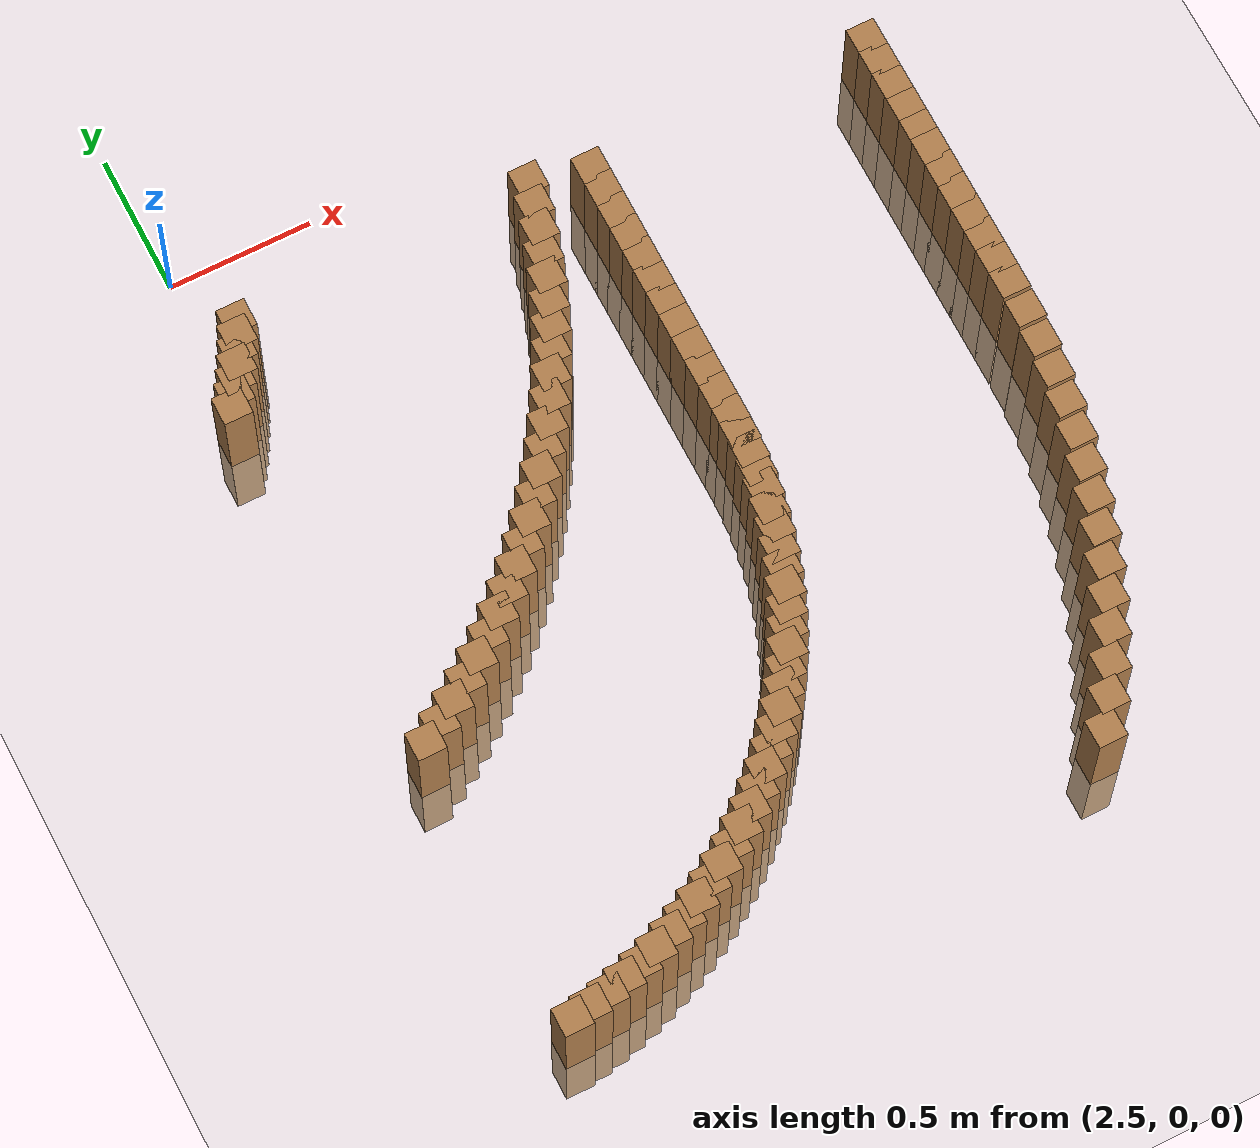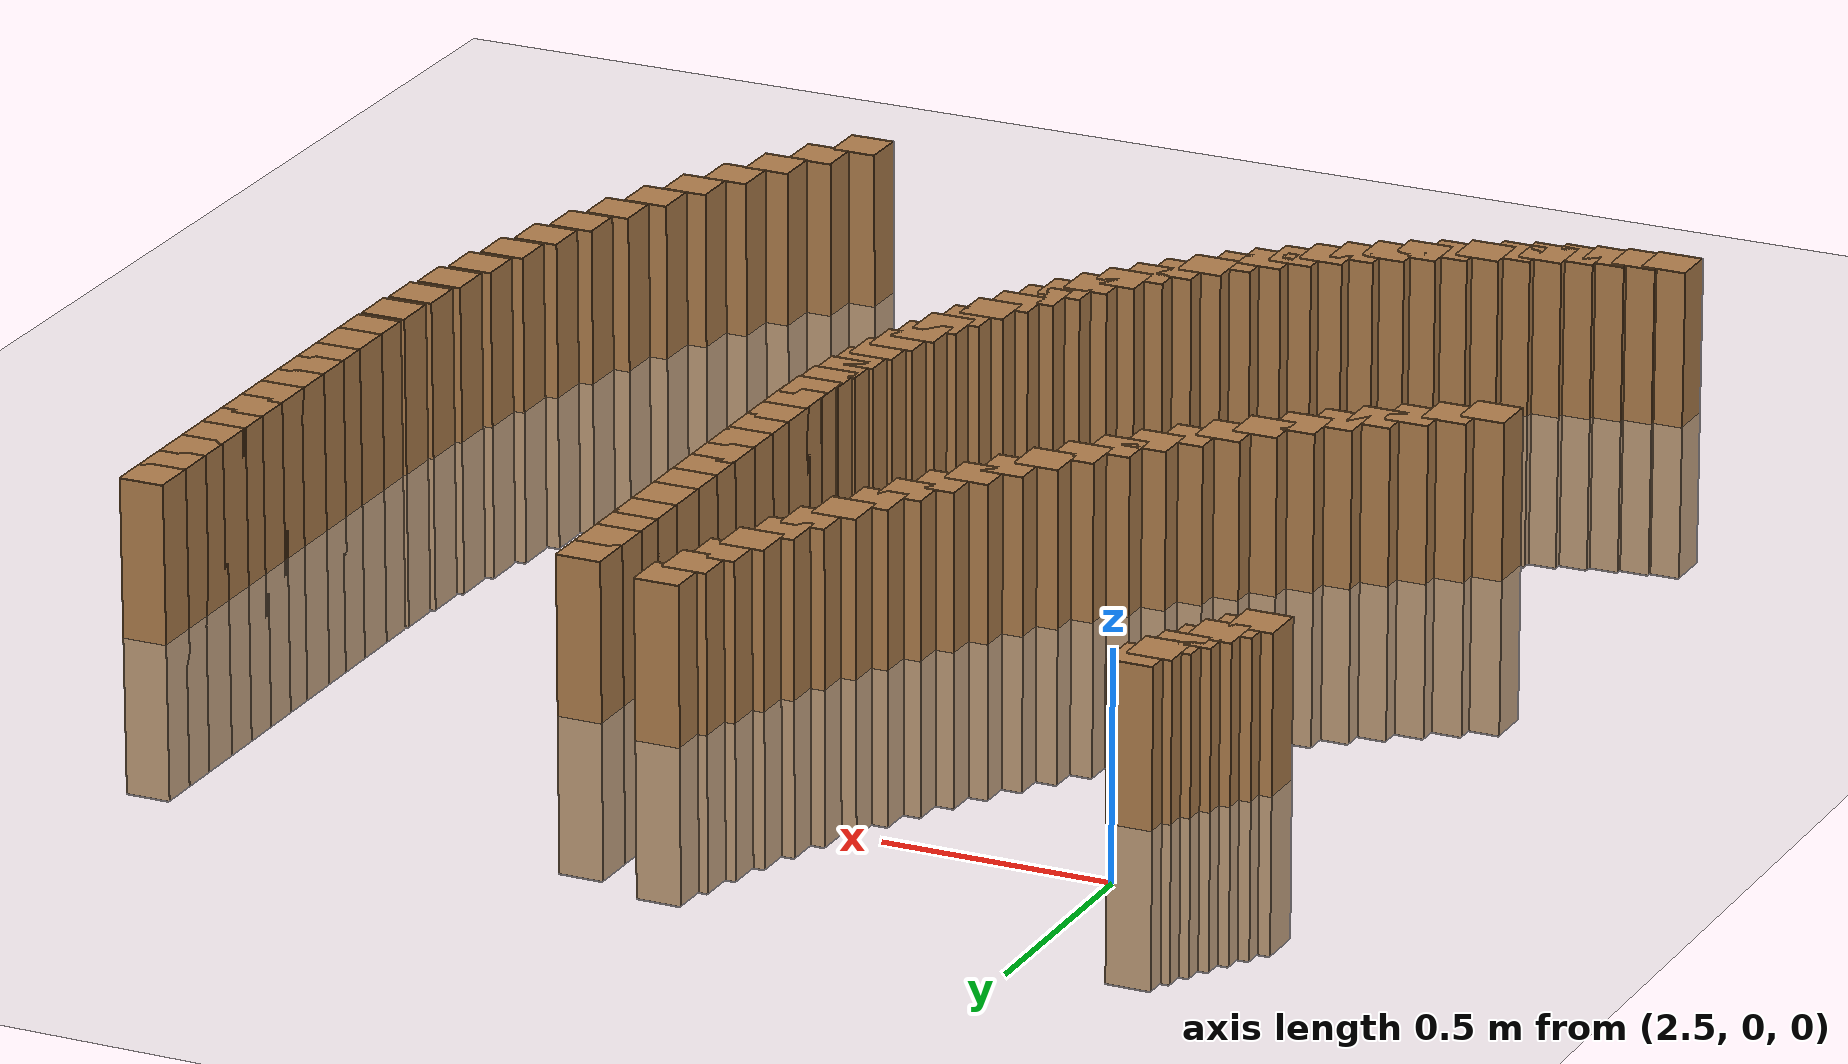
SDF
<sdf version="1.6">
 <world name="default">
  <model name="ground_plane">
   <static>1</static>
   <link name="link">
    <collision name="collision">
     <geometry><plane><normal>0 0 1</normal><size>100 100</size></plane></geometry>
     <surface><friction><ode><mu>100</mu><mu2>50</mu2></ode></friction></surface>
    </collision>
    <visual name="visual">
     <cast_shadows>0</cast_shadows>
     <geometry><plane><normal>0 0 1</normal><size>100 100</size></plane></geometry>
     <material>
      <script><uri>file://media/materials/scripts/gazebo.material</uri><name>Gazebo/Grey</name></script>
     </material>
    </visual>
   </link>
  </model>
  <model name="track">
   <link name="inner_209">
    <pose>3.637023 -0.326648 0.000000 0 -0 0</pose>
    <collision name="collision"><geometry><box><size>0.1 0.1 0.7</size></box></geometry></collision>
    <visual name="visual">
     <geometry><box><size>0.1 0.1 0.7</size></box></geometry>
     <material>
      <script><uri>file://media/materials/scripts/gazebo.material</uri><name>Gazebo/Wood</name></script>
     </material>
    </visual>
   </link>
   <link name="inner_210">
    <pose>3.616387 -0.409638 0.000000 0 -0 0</pose>
    <collision name="collision"><geometry><box><size>0.1 0.1 0.7</size></box></geometry></collision>
    <visual name="visual">
     <geometry><box><size>0.1 0.1 0.7</size></box></geometry>
     <material>
      <script><uri>file://media/materials/scripts/gazebo.material</uri><name>Gazebo/Wood</name></script>
     </material>
    </visual>
   </link>
   <link name="inner_211">
    <pose>3.592978 -0.491616 0.000000 0 -0 0</pose>
    <collision name="collision"><geometry><box><size>0.1 0.1 0.7</size></box></geometry></collision>
    <visual name="visual">
     <geometry><box><size>0.1 0.1 0.7</size></box></geometry>
     <material>
      <script><uri>file://media/materials/scripts/gazebo.material</uri><name>Gazebo/Wood</name></script>
     </material>
    </visual>
   </link>
   <link name="inner_212">
    <pose>3.566841 -0.572491 0.000000 0 -0 0</pose>
    <collision name="collision"><geometry><box><size>0.1 0.1 0.7</size></box></geometry></collision>
    <visual name="visual">
     <geometry><box><size>0.1 0.1 0.7</size></box></geometry>
     <material>
      <script><uri>file://media/materials/scripts/gazebo.material</uri><name>Gazebo/Wood</name></script>
     </material>
    </visual>
   </link>
   <link name="inner_213">
    <pose>3.538025 -0.652172 0.000000 0 -0 0</pose>
    <collision name="collision"><geometry><box><size>0.1 0.1 0.7</size></box></geometry></collision>
    <visual name="visual">
     <geometry><box><size>0.1 0.1 0.7</size></box></geometry>
     <material>
      <script><uri>file://media/materials/scripts/gazebo.material</uri><name>Gazebo/Wood</name></script>
     </material>
    </visual>
   </link>
   <link name="inner_214">
    <pose>3.506581 -0.730572 0.000000 0 -0 0</pose>
    <collision name="collision"><geometry><box><size>0.1 0.1 0.7</size></box></geometry></collision>
    <visual name="visual">
     <geometry><box><size>0.1 0.1 0.7</size></box></geometry>
     <material>
      <script><uri>file://media/materials/scripts/gazebo.material</uri><name>Gazebo/Wood</name></script>
     </material>
    </visual>
   </link>
   <link name="inner_215">
    <pose>3.472562 -0.807603 0.000000 0 -0 0</pose>
    <collision name="collision"><geometry><box><size>0.1 0.1 0.7</size></box></geometry></collision>
    <visual name="visual">
     <geometry><box><size>0.1 0.1 0.7</size></box></geometry>
     <material>
      <script><uri>file://media/materials/scripts/gazebo.material</uri><name>Gazebo/Wood</name></script>
     </material>
    </visual>
   </link>
   <link name="inner_216">
    <pose>3.436026 -0.883182 0.000000 0 -0 0</pose>
    <collision name="collision"><geometry><box><size>0.1 0.1 0.7</size></box></geometry></collision>
    <visual name="visual">
     <geometry><box><size>0.1 0.1 0.7</size></box></geometry>
     <material>
      <script><uri>file://media/materials/scripts/gazebo.material</uri><name>Gazebo/Wood</name></script>
     </material>
    </visual>
   </link>
   <link name="inner_217">
    <pose>3.397030 -0.957227 0.000000 0 -0 0</pose>
    <collision name="collision"><geometry><box><size>0.1 0.1 0.7</size></box></geometry></collision>
    <visual name="visual">
     <geometry><box><size>0.1 0.1 0.7</size></box></geometry>
     <material>
      <script><uri>file://media/materials/scripts/gazebo.material</uri><name>Gazebo/Wood</name></script>
     </material>
    </visual>
   </link>
   <link name="inner_218">
    <pose>3.355639 -1.029658 0.000000 0 -0 0</pose>
    <collision name="collision"><geometry><box><size>0.1 0.1 0.7</size></box></geometry></collision>
    <visual name="visual">
     <geometry><box><size>0.1 0.1 0.7</size></box></geometry>
     <material>
      <script><uri>file://media/materials/scripts/gazebo.material</uri><name>Gazebo/Wood</name></script>
     </material>
    </visual>
   </link>
   <link name="inner_219">
    <pose>3.311915 -1.100399 0.000000 0 -0 0</pose>
    <collision name="collision"><geometry><box><size>0.1 0.1 0.7</size></box></geometry></collision>
    <visual name="visual">
     <geometry><box><size>0.1 0.1 0.7</size></box></geometry>
     <material>
      <script><uri>file://media/materials/scripts/gazebo.material</uri><name>Gazebo/Wood</name></script>
     </material>
    </visual>
   </link>
   <link name="inner_220">
    <pose>3.265926 -1.169374 0.000000 0 -0 0</pose>
    <collision name="collision"><geometry><box><size>0.1 0.1 0.7</size></box></geometry></collision>
    <visual name="visual">
     <geometry><box><size>0.1 0.1 0.7</size></box></geometry>
     <material>
      <script><uri>file://media/materials/scripts/gazebo.material</uri><name>Gazebo/Wood</name></script>
     </material>
    </visual>
   </link>
   <link name="inner_221">
    <pose>3.217742 -1.236513 0.000000 0 -0 0</pose>
    <collision name="collision"><geometry><box><size>0.1 0.1 0.7</size></box></geometry></collision>
    <visual name="visual">
     <geometry><box><size>0.1 0.1 0.7</size></box></geometry>
     <material>
      <script><uri>file://media/materials/scripts/gazebo.material</uri><name>Gazebo/Wood</name></script>
     </material>
    </visual>
   </link>
   <link name="inner_222">
    <pose>3.167435 -1.301745 0.000000 0 -0 0</pose>
    <collision name="collision"><geometry><box><size>0.1 0.1 0.7</size></box></geometry></collision>
    <visual name="visual">
     <geometry><box><size>0.1 0.1 0.7</size></box></geometry>
     <material>
      <script><uri>file://media/materials/scripts/gazebo.material</uri><name>Gazebo/Wood</name></script>
     </material>
    </visual>
   </link>
   <link name="inner_223">
    <pose>3.115077 -1.365004 0.000000 0 -0 0</pose>
    <collision name="collision"><geometry><box><size>0.1 0.1 0.7</size></box></geometry></collision>
    <visual name="visual">
     <geometry><box><size>0.1 0.1 0.7</size></box></geometry>
     <material>
      <script><uri>file://media/materials/scripts/gazebo.material</uri><name>Gazebo/Wood</name></script>
     </material>
    </visual>
   </link>
   <link name="inner_224">
    <pose>3.060745 -1.426227 0.000000 0 -0 0</pose>
    <collision name="collision"><geometry><box><size>0.1 0.1 0.7</size></box></geometry></collision>
    <visual name="visual">
     <geometry><box><size>0.1 0.1 0.7</size></box></geometry>
     <material>
      <script><uri>file://media/materials/scripts/gazebo.material</uri><name>Gazebo/Wood</name></script>
     </material>
    </visual>
   </link>
   <link name="inner_225">
    <pose>3.004517 -1.485353 0.000000 0 -0 0</pose>
    <collision name="collision"><geometry><box><size>0.1 0.1 0.7</size></box></geometry></collision>
    <visual name="visual">
     <geometry><box><size>0.1 0.1 0.7</size></box></geometry>
     <material>
      <script><uri>file://media/materials/scripts/gazebo.material</uri><name>Gazebo/Wood</name></script>
     </material>
    </visual>
   </link>
   <link name="inner_226">
    <pose>2.946472 -1.542324 0.000000 0 -0 0</pose>
    <collision name="collision"><geometry><box><size>0.1 0.1 0.7</size></box></geometry></collision>
    <visual name="visual">
     <geometry><box><size>0.1 0.1 0.7</size></box></geometry>
     <material>
      <script><uri>file://media/materials/scripts/gazebo.material</uri><name>Gazebo/Wood</name></script>
     </material>
    </visual>
   </link>
   <link name="inner_227">
    <pose>2.886692 -1.597085 0.000000 0 -0 0</pose>
    <collision name="collision"><geometry><box><size>0.1 0.1 0.7</size></box></geometry></collision>
    <visual name="visual">
     <geometry><box><size>0.1 0.1 0.7</size></box></geometry>
     <material>
      <script><uri>file://media/materials/scripts/gazebo.material</uri><name>Gazebo/Wood</name></script>
     </material>
    </visual>
   </link>
   <link name="inner_228">
    <pose>2.825260 -1.649584 0.000000 0 -0 0</pose>
    <collision name="collision"><geometry><box><size>0.1 0.1 0.7</size></box></geometry></collision>
    <visual name="visual">
     <geometry><box><size>0.1 0.1 0.7</size></box></geometry>
     <material>
      <script><uri>file://media/materials/scripts/gazebo.material</uri><name>Gazebo/Wood</name></script>
     </material>
    </visual>
   </link>
   <link name="inner_229">
    <pose>2.762260 -1.699773 0.000000 0 -0 0</pose>
    <collision name="collision"><geometry><box><size>0.1 0.1 0.7</size></box></geometry></collision>
    <visual name="visual">
     <geometry><box><size>0.1 0.1 0.7</size></box></geometry>
     <material>
      <script><uri>file://media/materials/scripts/gazebo.material</uri><name>Gazebo/Wood</name></script>
     </material>
    </visual>
   </link>
   <link name="inner_230">
    <pose>2.697778 -1.747605 0.000000 0 -0 0</pose>
    <collision name="collision"><geometry><box><size>0.1 0.1 0.7</size></box></geometry></collision>
    <visual name="visual">
     <geometry><box><size>0.1 0.1 0.7</size></box></geometry>
     <material>
      <script><uri>file://media/materials/scripts/gazebo.material</uri><name>Gazebo/Wood</name></script>
     </material>
    </visual>
   </link>
   <link name="inner_231">
    <pose>2.631902 -1.793039 0.000000 0 -0 0</pose>
    <collision name="collision"><geometry><box><size>0.1 0.1 0.7</size></box></geometry></collision>
    <visual name="visual">
     <geometry><box><size>0.1 0.1 0.7</size></box></geometry>
     <material>
      <script><uri>file://media/materials/scripts/gazebo.material</uri><name>Gazebo/Wood</name></script>
     </material>
    </visual>
   </link>
   <link name="inner_232">
    <pose>2.564719 -1.836035 0.000000 0 -0 0</pose>
    <collision name="collision"><geometry><box><size>0.1 0.1 0.7</size></box></geometry></collision>
    <visual name="visual">
     <geometry><box><size>0.1 0.1 0.7</size></box></geometry>
     <material>
      <script><uri>file://media/materials/scripts/gazebo.material</uri><name>Gazebo/Wood</name></script>
     </material>
    </visual>
   </link>
   <link name="inner_233">
    <pose>2.496320 -1.876557 0.000000 0 -0 0</pose>
    <collision name="collision"><geometry><box><size>0.1 0.1 0.7</size></box></geometry></collision>
    <visual name="visual">
     <geometry><box><size>0.1 0.1 0.7</size></box></geometry>
     <material>
      <script><uri>file://media/materials/scripts/gazebo.material</uri><name>Gazebo/Wood</name></script>
     </material>
    </visual>
   </link>
   <link name="inner_500">
    <pose>2.498378 -2.865199 0.000000 0 -0 0</pose>
    <collision name="collision"><geometry><box><size>0.1 0.1 0.7</size></box></geometry></collision>
    <visual name="visual">
     <geometry><box><size>0.1 0.1 0.7</size></box></geometry>
     <material>
      <script><uri>file://media/materials/scripts/gazebo.material</uri><name>Gazebo/Wood</name></script>
     </material>
    </visual>
   </link>
   <link name="inner_501">
    <pose>2.564809 -2.854974 0.000000 0 -0 0</pose>
    <collision name="collision"><geometry><box><size>0.1 0.1 0.7</size></box></geometry></collision>
    <visual name="visual">
     <geometry><box><size>0.1 0.1 0.7</size></box></geometry>
     <material>
      <script><uri>file://media/materials/scripts/gazebo.material</uri><name>Gazebo/Wood</name></script>
     </material>
    </visual>
   </link>
   <link name="inner_502">
    <pose>2.630731 -2.841861 0.000000 0 -0 0</pose>
    <collision name="collision"><geometry><box><size>0.1 0.1 0.7</size></box></geometry></collision>
    <visual name="visual">
     <geometry><box><size>0.1 0.1 0.7</size></box></geometry>
     <material>
      <script><uri>file://media/materials/scripts/gazebo.material</uri><name>Gazebo/Wood</name></script>
     </material>
    </visual>
   </link>
   <link name="inner_503">
    <pose>2.696019 -2.825886 0.000000 0 -0 0</pose>
    <collision name="collision"><geometry><box><size>0.1 0.1 0.7</size></box></geometry></collision>
    <visual name="visual">
     <geometry><box><size>0.1 0.1 0.7</size></box></geometry>
     <material>
      <script><uri>file://media/materials/scripts/gazebo.material</uri><name>Gazebo/Wood</name></script>
     </material>
    </visual>
   </link>
   <link name="inner_504">
    <pose>2.760547 -2.807077 0.000000 0 -0 0</pose>
    <collision name="collision"><geometry><box><size>0.1 0.1 0.7</size></box></geometry></collision>
    <visual name="visual">
     <geometry><box><size>0.1 0.1 0.7</size></box></geometry>
     <material>
      <script><uri>file://media/materials/scripts/gazebo.material</uri><name>Gazebo/Wood</name></script>
     </material>
    </visual>
   </link>
   <link name="inner_505">
    <pose>2.824193 -2.785472 0.000000 0 -0 0</pose>
    <collision name="collision"><geometry><box><size>0.1 0.1 0.7</size></box></geometry></collision>
    <visual name="visual">
     <geometry><box><size>0.1 0.1 0.7</size></box></geometry>
     <material>
      <script><uri>file://media/materials/scripts/gazebo.material</uri><name>Gazebo/Wood</name></script>
     </material>
    </visual>
   </link>
   <link name="inner_506">
    <pose>2.886837 -2.761112 0.000000 0 -0 0</pose>
    <collision name="collision"><geometry><box><size>0.1 0.1 0.7</size></box></geometry></collision>
    <visual name="visual">
     <geometry><box><size>0.1 0.1 0.7</size></box></geometry>
     <material>
      <script><uri>file://media/materials/scripts/gazebo.material</uri><name>Gazebo/Wood</name></script>
     </material>
    </visual>
   </link>
   <link name="inner_507">
    <pose>2.948358 -2.734042 0.000000 0 -0 0</pose>
    <collision name="collision"><geometry><box><size>0.1 0.1 0.7</size></box></geometry></collision>
    <visual name="visual">
     <geometry><box><size>0.1 0.1 0.7</size></box></geometry>
     <material>
      <script><uri>file://media/materials/scripts/gazebo.material</uri><name>Gazebo/Wood</name></script>
     </material>
    </visual>
   </link>
   <link name="inner_508">
    <pose>3.008640 -2.704314 0.000000 0 -0 0</pose>
    <collision name="collision"><geometry><box><size>0.1 0.1 0.7</size></box></geometry></collision>
    <visual name="visual">
     <geometry><box><size>0.1 0.1 0.7</size></box></geometry>
     <material>
      <script><uri>file://media/materials/scripts/gazebo.material</uri><name>Gazebo/Wood</name></script>
     </material>
    </visual>
   </link>
   <link name="inner_509">
    <pose>3.067568 -2.671985 0.000000 0 -0 0</pose>
    <collision name="collision"><geometry><box><size>0.1 0.1 0.7</size></box></geometry></collision>
    <visual name="visual">
     <geometry><box><size>0.1 0.1 0.7</size></box></geometry>
     <material>
      <script><uri>file://media/materials/scripts/gazebo.material</uri><name>Gazebo/Wood</name></script>
     </material>
    </visual>
   </link>
   <link name="inner_510">
    <pose>3.125029 -2.637117 0.000000 0 -0 0</pose>
    <collision name="collision"><geometry><box><size>0.1 0.1 0.7</size></box></geometry></collision>
    <visual name="visual">
     <geometry><box><size>0.1 0.1 0.7</size></box></geometry>
     <material>
      <script><uri>file://media/materials/scripts/gazebo.material</uri><name>Gazebo/Wood</name></script>
     </material>
    </visual>
   </link>
   <link name="inner_511">
    <pose>3.180915 -2.599775 0.000000 0 -0 0</pose>
    <collision name="collision"><geometry><box><size>0.1 0.1 0.7</size></box></geometry></collision>
    <visual name="visual">
     <geometry><box><size>0.1 0.1 0.7</size></box></geometry>
     <material>
      <script><uri>file://media/materials/scripts/gazebo.material</uri><name>Gazebo/Wood</name></script>
     </material>
    </visual>
   </link>
   <link name="inner_512">
    <pose>3.235119 -2.560031 0.000000 0 -0 0</pose>
    <collision name="collision"><geometry><box><size>0.1 0.1 0.7</size></box></geometry></collision>
    <visual name="visual">
     <geometry><box><size>0.1 0.1 0.7</size></box></geometry>
     <material>
      <script><uri>file://media/materials/scripts/gazebo.material</uri><name>Gazebo/Wood</name></script>
     </material>
    </visual>
   </link>
   <link name="inner_513">
    <pose>3.287538 -2.517960 0.000000 0 -0 0</pose>
    <collision name="collision"><geometry><box><size>0.1 0.1 0.7</size></box></geometry></collision>
    <visual name="visual">
     <geometry><box><size>0.1 0.1 0.7</size></box></geometry>
     <material>
      <script><uri>file://media/materials/scripts/gazebo.material</uri><name>Gazebo/Wood</name></script>
     </material>
    </visual>
   </link>
   <link name="inner_514">
    <pose>3.338071 -2.473643 0.000000 0 -0 0</pose>
    <collision name="collision"><geometry><box><size>0.1 0.1 0.7</size></box></geometry></collision>
    <visual name="visual">
     <geometry><box><size>0.1 0.1 0.7</size></box></geometry>
     <material>
      <script><uri>file://media/materials/scripts/gazebo.material</uri><name>Gazebo/Wood</name></script>
     </material>
    </visual>
   </link>
   <link name="inner_515">
    <pose>3.386624 -2.427165 0.000000 0 -0 0</pose>
    <collision name="collision"><geometry><box><size>0.1 0.1 0.7</size></box></geometry></collision>
    <visual name="visual">
     <geometry><box><size>0.1 0.1 0.7</size></box></geometry>
     <material>
      <script><uri>file://media/materials/scripts/gazebo.material</uri><name>Gazebo/Wood</name></script>
     </material>
    </visual>
   </link>
   <link name="inner_516">
    <pose>3.433103 -2.378612 0.000000 0 -0 0</pose>
    <collision name="collision"><geometry><box><size>0.1 0.1 0.7</size></box></geometry></collision>
    <visual name="visual">
     <geometry><box><size>0.1 0.1 0.7</size></box></geometry>
     <material>
      <script><uri>file://media/materials/scripts/gazebo.material</uri><name>Gazebo/Wood</name></script>
     </material>
    </visual>
   </link>
   <link name="inner_517">
    <pose>3.477420 -2.328078 0.000000 0 -0 0</pose>
    <collision name="collision"><geometry><box><size>0.1 0.1 0.7</size></box></geometry></collision>
    <visual name="visual">
     <geometry><box><size>0.1 0.1 0.7</size></box></geometry>
     <material>
      <script><uri>file://media/materials/scripts/gazebo.material</uri><name>Gazebo/Wood</name></script>
     </material>
    </visual>
   </link>
   <link name="inner_518">
    <pose>3.519490 -2.275659 0.000000 0 -0 0</pose>
    <collision name="collision"><geometry><box><size>0.1 0.1 0.7</size></box></geometry></collision>
    <visual name="visual">
     <geometry><box><size>0.1 0.1 0.7</size></box></geometry>
     <material>
      <script><uri>file://media/materials/scripts/gazebo.material</uri><name>Gazebo/Wood</name></script>
     </material>
    </visual>
   </link>
   <link name="inner_519">
    <pose>3.559234 -2.221456 0.000000 0 -0 0</pose>
    <collision name="collision"><geometry><box><size>0.1 0.1 0.7</size></box></geometry></collision>
    <visual name="visual">
     <geometry><box><size>0.1 0.1 0.7</size></box></geometry>
     <material>
      <script><uri>file://media/materials/scripts/gazebo.material</uri><name>Gazebo/Wood</name></script>
     </material>
    </visual>
   </link>
   <link name="inner_520">
    <pose>3.596576 -2.165570 0.000000 0 -0 0</pose>
    <collision name="collision"><geometry><box><size>0.1 0.1 0.7</size></box></geometry></collision>
    <visual name="visual">
     <geometry><box><size>0.1 0.1 0.7</size></box></geometry>
     <material>
      <script><uri>file://media/materials/scripts/gazebo.material</uri><name>Gazebo/Wood</name></script>
     </material>
    </visual>
   </link>
   <link name="inner_521">
    <pose>3.631445 -2.108108 0.000000 0 -0 0</pose>
    <collision name="collision"><geometry><box><size>0.1 0.1 0.7</size></box></geometry></collision>
    <visual name="visual">
     <geometry><box><size>0.1 0.1 0.7</size></box></geometry>
     <material>
      <script><uri>file://media/materials/scripts/gazebo.material</uri><name>Gazebo/Wood</name></script>
     </material>
    </visual>
   </link>
   <link name="inner_522">
    <pose>3.663773 -2.049180 0.000000 0 -0 0</pose>
    <collision name="collision"><geometry><box><size>0.1 0.1 0.7</size></box></geometry></collision>
    <visual name="visual">
     <geometry><box><size>0.1 0.1 0.7</size></box></geometry>
     <material>
      <script><uri>file://media/materials/scripts/gazebo.material</uri><name>Gazebo/Wood</name></script>
     </material>
    </visual>
   </link>
   <link name="inner_523">
    <pose>3.693501 -1.988898 0.000000 0 -0 0</pose>
    <collision name="collision"><geometry><box><size>0.1 0.1 0.7</size></box></geometry></collision>
    <visual name="visual">
     <geometry><box><size>0.1 0.1 0.7</size></box></geometry>
     <material>
      <script><uri>file://media/materials/scripts/gazebo.material</uri><name>Gazebo/Wood</name></script>
     </material>
    </visual>
   </link>
   <link name="inner_524">
    <pose>3.720571 -1.927377 0.000000 0 -0 0</pose>
    <collision name="collision"><geometry><box><size>0.1 0.1 0.7</size></box></geometry></collision>
    <visual name="visual">
     <geometry><box><size>0.1 0.1 0.7</size></box></geometry>
     <material>
      <script><uri>file://media/materials/scripts/gazebo.material</uri><name>Gazebo/Wood</name></script>
     </material>
    </visual>
   </link>
   <link name="inner_525">
    <pose>3.744932 -1.864734 0.000000 0 -0 0</pose>
    <collision name="collision"><geometry><box><size>0.1 0.1 0.7</size></box></geometry></collision>
    <visual name="visual">
     <geometry><box><size>0.1 0.1 0.7</size></box></geometry>
     <material>
      <script><uri>file://media/materials/scripts/gazebo.material</uri><name>Gazebo/Wood</name></script>
     </material>
    </visual>
   </link>
   <link name="inner_526">
    <pose>3.766537 -1.801087 0.000000 0 -0 0</pose>
    <collision name="collision"><geometry><box><size>0.1 0.1 0.7</size></box></geometry></collision>
    <visual name="visual">
     <geometry><box><size>0.1 0.1 0.7</size></box></geometry>
     <material>
      <script><uri>file://media/materials/scripts/gazebo.material</uri><name>Gazebo/Wood</name></script>
     </material>
    </visual>
   </link>
   <link name="inner_527">
    <pose>3.785345 -1.736559 0.000000 0 -0 0</pose>
    <collision name="collision"><geometry><box><size>0.1 0.1 0.7</size></box></geometry></collision>
    <visual name="visual">
     <geometry><box><size>0.1 0.1 0.7</size></box></geometry>
     <material>
      <script><uri>file://media/materials/scripts/gazebo.material</uri><name>Gazebo/Wood</name></script>
     </material>
    </visual>
   </link>
   <link name="inner_528">
    <pose>3.801321 -1.671272 0.000000 0 -0 0</pose>
    <collision name="collision"><geometry><box><size>0.1 0.1 0.7</size></box></geometry></collision>
    <visual name="visual">
     <geometry><box><size>0.1 0.1 0.7</size></box></geometry>
     <material>
      <script><uri>file://media/materials/scripts/gazebo.material</uri><name>Gazebo/Wood</name></script>
     </material>
    </visual>
   </link>
   <link name="inner_529">
    <pose>3.814434 -1.605350 0.000000 0 -0 0</pose>
    <collision name="collision"><geometry><box><size>0.1 0.1 0.7</size></box></geometry></collision>
    <visual name="visual">
     <geometry><box><size>0.1 0.1 0.7</size></box></geometry>
     <material>
      <script><uri>file://media/materials/scripts/gazebo.material</uri><name>Gazebo/Wood</name></script>
     </material>
    </visual>
   </link>
   <link name="inner_530">
    <pose>3.824658 -1.538919 0.000000 0 -0 0</pose>
    <collision name="collision"><geometry><box><size>0.1 0.1 0.7</size></box></geometry></collision>
    <visual name="visual">
     <geometry><box><size>0.1 0.1 0.7</size></box></geometry>
     <material>
      <script><uri>file://media/materials/scripts/gazebo.material</uri><name>Gazebo/Wood</name></script>
     </material>
    </visual>
   </link>
   <link name="inner_531">
    <pose>3.831976 -1.472105 0.000000 0 -0 0</pose>
    <collision name="collision"><geometry><box><size>0.1 0.1 0.7</size></box></geometry></collision>
    <visual name="visual">
     <geometry><box><size>0.1 0.1 0.7</size></box></geometry>
     <material>
      <script><uri>file://media/materials/scripts/gazebo.material</uri><name>Gazebo/Wood</name></script>
     </material>
    </visual>
   </link>
   <link name="inner_532">
    <pose>3.836372 -1.405035 0.000000 0 -0 0</pose>
    <collision name="collision"><geometry><box><size>0.1 0.1 0.7</size></box></geometry></collision>
    <visual name="visual">
     <geometry><box><size>0.1 0.1 0.7</size></box></geometry>
     <material>
      <script><uri>file://media/materials/scripts/gazebo.material</uri><name>Gazebo/Wood</name></script>
     </material>
    </visual>
   </link>
   <link name="inner_533">
    <pose>3.837838 -1.337838 0.000000 0 -0 0</pose>
    <collision name="collision"><geometry><box><size>0.1 0.1 0.7</size></box></geometry></collision>
    <visual name="visual">
     <geometry><box><size>0.1 0.1 0.7</size></box></geometry>
     <material>
      <script><uri>file://media/materials/scripts/gazebo.material</uri><name>Gazebo/Wood</name></script>
     </material>
    </visual>
   </link>
   <link name="inner_534">
    <pose>3.837838 -1.250450 0.000000 0 -0 0</pose>
    <collision name="collision"><geometry><box><size>0.1 0.1 0.7</size></box></geometry></collision>
    <visual name="visual">
     <geometry><box><size>0.1 0.1 0.7</size></box></geometry>
     <material>
      <script><uri>file://media/materials/scripts/gazebo.material</uri><name>Gazebo/Wood</name></script>
     </material>
    </visual>
   </link>
   <link name="inner_535">
    <pose>3.837838 -1.163063 0.000000 0 -0 0</pose>
    <collision name="collision"><geometry><box><size>0.1 0.1 0.7</size></box></geometry></collision>
    <visual name="visual">
     <geometry><box><size>0.1 0.1 0.7</size></box></geometry>
     <material>
      <script><uri>file://media/materials/scripts/gazebo.material</uri><name>Gazebo/Wood</name></script>
     </material>
    </visual>
   </link>
   <link name="inner_536">
    <pose>3.837838 -1.075676 0.000000 0 -0 0</pose>
    <collision name="collision"><geometry><box><size>0.1 0.1 0.7</size></box></geometry></collision>
    <visual name="visual">
     <geometry><box><size>0.1 0.1 0.7</size></box></geometry>
     <material>
      <script><uri>file://media/materials/scripts/gazebo.material</uri><name>Gazebo/Wood</name></script>
     </material>
    </visual>
   </link>
   <link name="inner_537">
    <pose>3.837838 -0.988288 0.000000 0 -0 0</pose>
    <collision name="collision"><geometry><box><size>0.1 0.1 0.7</size></box></geometry></collision>
    <visual name="visual">
     <geometry><box><size>0.1 0.1 0.7</size></box></geometry>
     <material>
      <script><uri>file://media/materials/scripts/gazebo.material</uri><name>Gazebo/Wood</name></script>
     </material>
    </visual>
   </link>
   <link name="inner_538">
    <pose>3.837838 -0.900901 0.000000 0 -0 0</pose>
    <collision name="collision"><geometry><box><size>0.1 0.1 0.7</size></box></geometry></collision>
    <visual name="visual">
     <geometry><box><size>0.1 0.1 0.7</size></box></geometry>
     <material>
      <script><uri>file://media/materials/scripts/gazebo.material</uri><name>Gazebo/Wood</name></script>
     </material>
    </visual>
   </link>
   <link name="inner_539">
    <pose>3.837838 -0.813514 0.000000 0 -0 0</pose>
    <collision name="collision"><geometry><box><size>0.1 0.1 0.7</size></box></geometry></collision>
    <visual name="visual">
     <geometry><box><size>0.1 0.1 0.7</size></box></geometry>
     <material>
      <script><uri>file://media/materials/scripts/gazebo.material</uri><name>Gazebo/Wood</name></script>
     </material>
    </visual>
   </link>
   <link name="inner_540">
    <pose>3.837838 -0.726126 0.000000 0 -0 0</pose>
    <collision name="collision"><geometry><box><size>0.1 0.1 0.7</size></box></geometry></collision>
    <visual name="visual">
     <geometry><box><size>0.1 0.1 0.7</size></box></geometry>
     <material>
      <script><uri>file://media/materials/scripts/gazebo.material</uri><name>Gazebo/Wood</name></script>
     </material>
    </visual>
   </link>
   <link name="inner_541">
    <pose>3.837838 -0.638739 0.000000 0 -0 0</pose>
    <collision name="collision"><geometry><box><size>0.1 0.1 0.7</size></box></geometry></collision>
    <visual name="visual">
     <geometry><box><size>0.1 0.1 0.7</size></box></geometry>
     <material>
      <script><uri>file://media/materials/scripts/gazebo.material</uri><name>Gazebo/Wood</name></script>
     </material>
    </visual>
   </link>
   <link name="inner_542">
    <pose>3.837838 -0.551351 0.000000 0 -0 0</pose>
    <collision name="collision"><geometry><box><size>0.1 0.1 0.7</size></box></geometry></collision>
    <visual name="visual">
     <geometry><box><size>0.1 0.1 0.7</size></box></geometry>
     <material>
      <script><uri>file://media/materials/scripts/gazebo.material</uri><name>Gazebo/Wood</name></script>
     </material>
    </visual>
   </link>
   <link name="inner_543">
    <pose>3.837838 -0.463964 0.000000 0 -0 0</pose>
    <collision name="collision"><geometry><box><size>0.1 0.1 0.7</size></box></geometry></collision>
    <visual name="visual">
     <geometry><box><size>0.1 0.1 0.7</size></box></geometry>
     <material>
      <script><uri>file://media/materials/scripts/gazebo.material</uri><name>Gazebo/Wood</name></script>
     </material>
    </visual>
   </link>
   <link name="inner_544">
    <pose>3.837838 -0.376577 0.000000 0 -0 0</pose>
    <collision name="collision"><geometry><box><size>0.1 0.1 0.7</size></box></geometry></collision>
    <visual name="visual">
     <geometry><box><size>0.1 0.1 0.7</size></box></geometry>
     <material>
      <script><uri>file://media/materials/scripts/gazebo.material</uri><name>Gazebo/Wood</name></script>
     </material>
    </visual>
   </link>
   <link name="outer_212">
    <pose>2.595274 -0.335726 0.000000 0 -0 0</pose>
    <collision name="collision"><geometry><box><size>0.1 0.1 0.7</size></box></geometry></collision>
    <visual name="visual">
     <geometry><box><size>0.1 0.1 0.7</size></box></geometry>
     <material>
      <script><uri>file://media/materials/scripts/gazebo.material</uri><name>Gazebo/Wood</name></script>
     </material>
    </visual>
   </link>
   <link name="outer_213">
    <pose>2.575108 -0.382375 0.000000 0 -0 0</pose>
    <collision name="collision"><geometry><box><size>0.1 0.1 0.7</size></box></geometry></collision>
    <visual name="visual">
     <geometry><box><size>0.1 0.1 0.7</size></box></geometry>
     <material>
      <script><uri>file://media/materials/scripts/gazebo.material</uri><name>Gazebo/Wood</name></script>
     </material>
    </visual>
   </link>
   <link name="outer_214">
    <pose>2.553436 -0.428057 0.000000 0 -0 0</pose>
    <collision name="collision"><geometry><box><size>0.1 0.1 0.7</size></box></geometry></collision>
    <visual name="visual">
     <geometry><box><size>0.1 0.1 0.7</size></box></geometry>
     <material>
      <script><uri>file://media/materials/scripts/gazebo.material</uri><name>Gazebo/Wood</name></script>
     </material>
    </visual>
   </link>
   <link name="outer_215">
    <pose>2.530302 -0.472723 0.000000 0 -0 0</pose>
    <collision name="collision"><geometry><box><size>0.1 0.1 0.7</size></box></geometry></collision>
    <visual name="visual">
     <geometry><box><size>0.1 0.1 0.7</size></box></geometry>
     <material>
      <script><uri>file://media/materials/scripts/gazebo.material</uri><name>Gazebo/Wood</name></script>
     </material>
    </visual>
   </link>
   <link name="outer_216">
    <pose>2.505747 -0.516328 0.000000 0 -0 0</pose>
    <collision name="collision"><geometry><box><size>0.1 0.1 0.7</size></box></geometry></collision>
    <visual name="visual">
     <geometry><box><size>0.1 0.1 0.7</size></box></geometry>
     <material>
      <script><uri>file://media/materials/scripts/gazebo.material</uri><name>Gazebo/Wood</name></script>
     </material>
    </visual>
   </link>
   <link name="outer_217">
    <pose>2.479819 -0.558826 0.000000 0 -0 0</pose>
    <collision name="collision"><geometry><box><size>0.1 0.1 0.7</size></box></geometry></collision>
    <visual name="visual">
     <geometry><box><size>0.1 0.1 0.7</size></box></geometry>
     <material>
      <script><uri>file://media/materials/scripts/gazebo.material</uri><name>Gazebo/Wood</name></script>
     </material>
    </visual>
   </link>
   <link name="outer_218">
    <pose>2.452564 -0.600175 0.000000 0 -0 0</pose>
    <collision name="collision"><geometry><box><size>0.1 0.1 0.7</size></box></geometry></collision>
    <visual name="visual">
     <geometry><box><size>0.1 0.1 0.7</size></box></geometry>
     <material>
      <script><uri>file://media/materials/scripts/gazebo.material</uri><name>Gazebo/Wood</name></script>
     </material>
    </visual>
   </link>
   <link name="outer_519">
    <pose>4.378386 -2.795032 0.000000 0 -0 0</pose>
    <collision name="collision"><geometry><box><size>0.1 0.1 0.7</size></box></geometry></collision>
    <visual name="visual">
     <geometry><box><size>0.1 0.1 0.7</size></box></geometry>
     <material>
      <script><uri>file://media/materials/scripts/gazebo.material</uri><name>Gazebo/Wood</name></script>
     </material>
    </visual>
   </link>
   <link name="outer_520">
    <pose>4.439967 -2.702869 0.000000 0 -0 0</pose>
    <collision name="collision"><geometry><box><size>0.1 0.1 0.7</size></box></geometry></collision>
    <visual name="visual">
     <geometry><box><size>0.1 0.1 0.7</size></box></geometry>
     <material>
      <script><uri>file://media/materials/scripts/gazebo.material</uri><name>Gazebo/Wood</name></script>
     </material>
    </visual>
   </link>
   <link name="outer_521">
    <pose>4.497470 -2.608108 0.000000 0 -0 0</pose>
    <collision name="collision"><geometry><box><size>0.1 0.1 0.7</size></box></geometry></collision>
    <visual name="visual">
     <geometry><box><size>0.1 0.1 0.7</size></box></geometry>
     <material>
      <script><uri>file://media/materials/scripts/gazebo.material</uri><name>Gazebo/Wood</name></script>
     </material>
    </visual>
   </link>
   <link name="outer_522">
    <pose>4.550784 -2.510929 0.000000 0 -0 0</pose>
    <collision name="collision"><geometry><box><size>0.1 0.1 0.7</size></box></geometry></collision>
    <visual name="visual">
     <geometry><box><size>0.1 0.1 0.7</size></box></geometry>
     <material>
      <script><uri>file://media/materials/scripts/gazebo.material</uri><name>Gazebo/Wood</name></script>
     </material>
    </visual>
   </link>
   <link name="outer_523">
    <pose>4.599809 -2.411517 0.000000 0 -0 0</pose>
    <collision name="collision"><geometry><box><size>0.1 0.1 0.7</size></box></geometry></collision>
    <visual name="visual">
     <geometry><box><size>0.1 0.1 0.7</size></box></geometry>
     <material>
      <script><uri>file://media/materials/scripts/gazebo.material</uri><name>Gazebo/Wood</name></script>
     </material>
    </visual>
   </link>
   <link name="outer_524">
    <pose>4.644451 -2.310061 0.000000 0 -0 0</pose>
    <collision name="collision"><geometry><box><size>0.1 0.1 0.7</size></box></geometry></collision>
    <visual name="visual">
     <geometry><box><size>0.1 0.1 0.7</size></box></geometry>
     <material>
      <script><uri>file://media/materials/scripts/gazebo.material</uri><name>Gazebo/Wood</name></script>
     </material>
    </visual>
   </link>
   <link name="outer_525">
    <pose>4.684624 -2.206754 0.000000 0 -0 0</pose>
    <collision name="collision"><geometry><box><size>0.1 0.1 0.7</size></box></geometry></collision>
    <visual name="visual">
     <geometry><box><size>0.1 0.1 0.7</size></box></geometry>
     <material>
      <script><uri>file://media/materials/scripts/gazebo.material</uri><name>Gazebo/Wood</name></script>
     </material>
    </visual>
   </link>
   <link name="outer_526">
    <pose>4.720254 -2.101793 0.000000 0 -0 0</pose>
    <collision name="collision"><geometry><box><size>0.1 0.1 0.7</size></box></geometry></collision>
    <visual name="visual">
     <geometry><box><size>0.1 0.1 0.7</size></box></geometry>
     <material>
      <script><uri>file://media/materials/scripts/gazebo.material</uri><name>Gazebo/Wood</name></script>
     </material>
    </visual>
   </link>
   <link name="outer_527">
    <pose>4.751271 -1.995378 0.000000 0 -0 0</pose>
    <collision name="collision"><geometry><box><size>0.1 0.1 0.7</size></box></geometry></collision>
    <visual name="visual">
     <geometry><box><size>0.1 0.1 0.7</size></box></geometry>
     <material>
      <script><uri>file://media/materials/scripts/gazebo.material</uri><name>Gazebo/Wood</name></script>
     </material>
    </visual>
   </link>
   <link name="outer_528">
    <pose>4.777617 -1.887711 0.000000 0 -0 0</pose>
    <collision name="collision"><geometry><box><size>0.1 0.1 0.7</size></box></geometry></collision>
    <visual name="visual">
     <geometry><box><size>0.1 0.1 0.7</size></box></geometry>
     <material>
      <script><uri>file://media/materials/scripts/gazebo.material</uri><name>Gazebo/Wood</name></script>
     </material>
    </visual>
   </link>
   <link name="outer_529">
    <pose>4.799241 -1.778998 0.000000 0 -0 0</pose>
    <collision name="collision"><geometry><box><size>0.1 0.1 0.7</size></box></geometry></collision>
    <visual name="visual">
     <geometry><box><size>0.1 0.1 0.7</size></box></geometry>
     <material>
      <script><uri>file://media/materials/scripts/gazebo.material</uri><name>Gazebo/Wood</name></script>
     </material>
    </visual>
   </link>
   <link name="outer_530">
    <pose>4.816103 -1.669445 0.000000 0 -0 0</pose>
    <collision name="collision"><geometry><box><size>0.1 0.1 0.7</size></box></geometry></collision>
    <visual name="visual">
     <geometry><box><size>0.1 0.1 0.7</size></box></geometry>
     <material>
      <script><uri>file://media/materials/scripts/gazebo.material</uri><name>Gazebo/Wood</name></script>
     </material>
    </visual>
   </link>
   <link name="outer_531">
    <pose>4.828170 -1.559261 0.000000 0 -0 0</pose>
    <collision name="collision"><geometry><box><size>0.1 0.1 0.7</size></box></geometry></collision>
    <visual name="visual">
     <geometry><box><size>0.1 0.1 0.7</size></box></geometry>
     <material>
      <script><uri>file://media/materials/scripts/gazebo.material</uri><name>Gazebo/Wood</name></script>
     </material>
    </visual>
   </link>
   <link name="outer_532">
    <pose>4.835420 -1.448655 0.000000 0 -0 0</pose>
    <collision name="collision"><geometry><box><size>0.1 0.1 0.7</size></box></geometry></collision>
    <visual name="visual">
     <geometry><box><size>0.1 0.1 0.7</size></box></geometry>
     <material>
      <script><uri>file://media/materials/scripts/gazebo.material</uri><name>Gazebo/Wood</name></script>
     </material>
    </visual>
   </link>
   <link name="outer_533">
    <pose>4.837838 -1.337838 0.000000 0 -0 0</pose>
    <collision name="collision"><geometry><box><size>0.1 0.1 0.7</size></box></geometry></collision>
    <visual name="visual">
     <geometry><box><size>0.1 0.1 0.7</size></box></geometry>
     <material>
      <script><uri>file://media/materials/scripts/gazebo.material</uri><name>Gazebo/Wood</name></script>
     </material>
    </visual>
   </link>
   <link name="outer_534">
    <pose>4.837838 -1.250450 0.000000 0 -0 0</pose>
    <collision name="collision"><geometry><box><size>0.1 0.1 0.7</size></box></geometry></collision>
    <visual name="visual">
     <geometry><box><size>0.1 0.1 0.7</size></box></geometry>
     <material>
      <script><uri>file://media/materials/scripts/gazebo.material</uri><name>Gazebo/Wood</name></script>
     </material>
    </visual>
   </link>
   <link name="outer_535">
    <pose>4.837838 -1.163063 0.000000 0 -0 0</pose>
    <collision name="collision"><geometry><box><size>0.1 0.1 0.7</size></box></geometry></collision>
    <visual name="visual">
     <geometry><box><size>0.1 0.1 0.7</size></box></geometry>
     <material>
      <script><uri>file://media/materials/scripts/gazebo.material</uri><name>Gazebo/Wood</name></script>
     </material>
    </visual>
   </link>
   <link name="outer_536">
    <pose>4.837838 -1.075676 0.000000 0 -0 0</pose>
    <collision name="collision"><geometry><box><size>0.1 0.1 0.7</size></box></geometry></collision>
    <visual name="visual">
     <geometry><box><size>0.1 0.1 0.7</size></box></geometry>
     <material>
      <script><uri>file://media/materials/scripts/gazebo.material</uri><name>Gazebo/Wood</name></script>
     </material>
    </visual>
   </link>
   <link name="outer_537">
    <pose>4.837838 -0.988288 0.000000 0 -0 0</pose>
    <collision name="collision"><geometry><box><size>0.1 0.1 0.7</size></box></geometry></collision>
    <visual name="visual">
     <geometry><box><size>0.1 0.1 0.7</size></box></geometry>
     <material>
      <script><uri>file://media/materials/scripts/gazebo.material</uri><name>Gazebo/Wood</name></script>
     </material>
    </visual>
   </link>
   <link name="outer_538">
    <pose>4.837838 -0.900901 0.000000 0 -0 0</pose>
    <collision name="collision"><geometry><box><size>0.1 0.1 0.7</size></box></geometry></collision>
    <visual name="visual">
     <geometry><box><size>0.1 0.1 0.7</size></box></geometry>
     <material>
      <script><uri>file://media/materials/scripts/gazebo.material</uri><name>Gazebo/Wood</name></script>
     </material>
    </visual>
   </link>
   <link name="outer_539">
    <pose>4.837838 -0.813514 0.000000 0 -0 0</pose>
    <collision name="collision"><geometry><box><size>0.1 0.1 0.7</size></box></geometry></collision>
    <visual name="visual">
     <geometry><box><size>0.1 0.1 0.7</size></box></geometry>
     <material>
      <script><uri>file://media/materials/scripts/gazebo.material</uri><name>Gazebo/Wood</name></script>
     </material>
    </visual>
   </link>
   <link name="outer_540">
    <pose>4.837838 -0.726126 0.000000 0 -0 0</pose>
    <collision name="collision"><geometry><box><size>0.1 0.1 0.7</size></box></geometry></collision>
    <visual name="visual">
     <geometry><box><size>0.1 0.1 0.7</size></box></geometry>
     <material>
      <script><uri>file://media/materials/scripts/gazebo.material</uri><name>Gazebo/Wood</name></script>
     </material>
    </visual>
   </link>
   <link name="outer_541">
    <pose>4.837838 -0.638739 0.000000 0 -0 0</pose>
    <collision name="collision"><geometry><box><size>0.1 0.1 0.7</size></box></geometry></collision>
    <visual name="visual">
     <geometry><box><size>0.1 0.1 0.7</size></box></geometry>
     <material>
      <script><uri>file://media/materials/scripts/gazebo.material</uri><name>Gazebo/Wood</name></script>
     </material>
    </visual>
   </link>
   <link name="outer_542">
    <pose>4.837838 -0.551351 0.000000 0 -0 0</pose>
    <collision name="collision"><geometry><box><size>0.1 0.1 0.7</size></box></geometry></collision>
    <visual name="visual">
     <geometry><box><size>0.1 0.1 0.7</size></box></geometry>
     <material>
      <script><uri>file://media/materials/scripts/gazebo.material</uri><name>Gazebo/Wood</name></script>
     </material>
    </visual>
   </link>
   <link name="outer_543">
    <pose>4.837838 -0.463964 0.000000 0 -0 0</pose>
    <collision name="collision"><geometry><box><size>0.1 0.1 0.7</size></box></geometry></collision>
    <visual name="visual">
     <geometry><box><size>0.1 0.1 0.7</size></box></geometry>
     <material>
      <script><uri>file://media/materials/scripts/gazebo.material</uri><name>Gazebo/Wood</name></script>
     </material>
    </visual>
   </link>
   <link name="outer_544">
    <pose>4.837838 -0.376577 0.000000 0 -0 0</pose>
    <collision name="collision"><geometry><box><size>0.1 0.1 0.7</size></box></geometry></collision>
    <visual name="visual">
     <geometry><box><size>0.1 0.1 0.7</size></box></geometry>
     <material>
      <script><uri>file://media/materials/scripts/gazebo.material</uri><name>Gazebo/Wood</name></script>
     </material>
    </visual>
   </link>
   <static>1</static>
  </model>
 </world>
</sdf>
